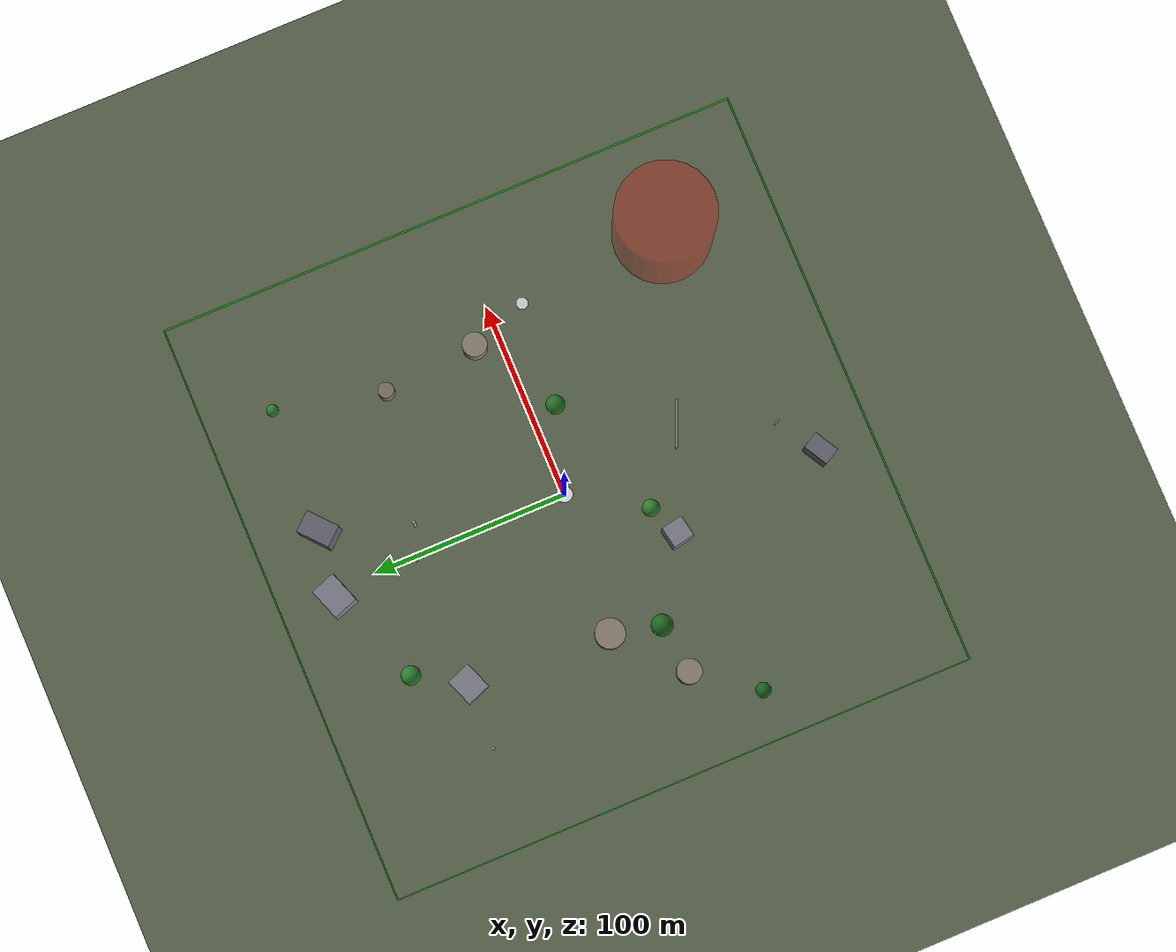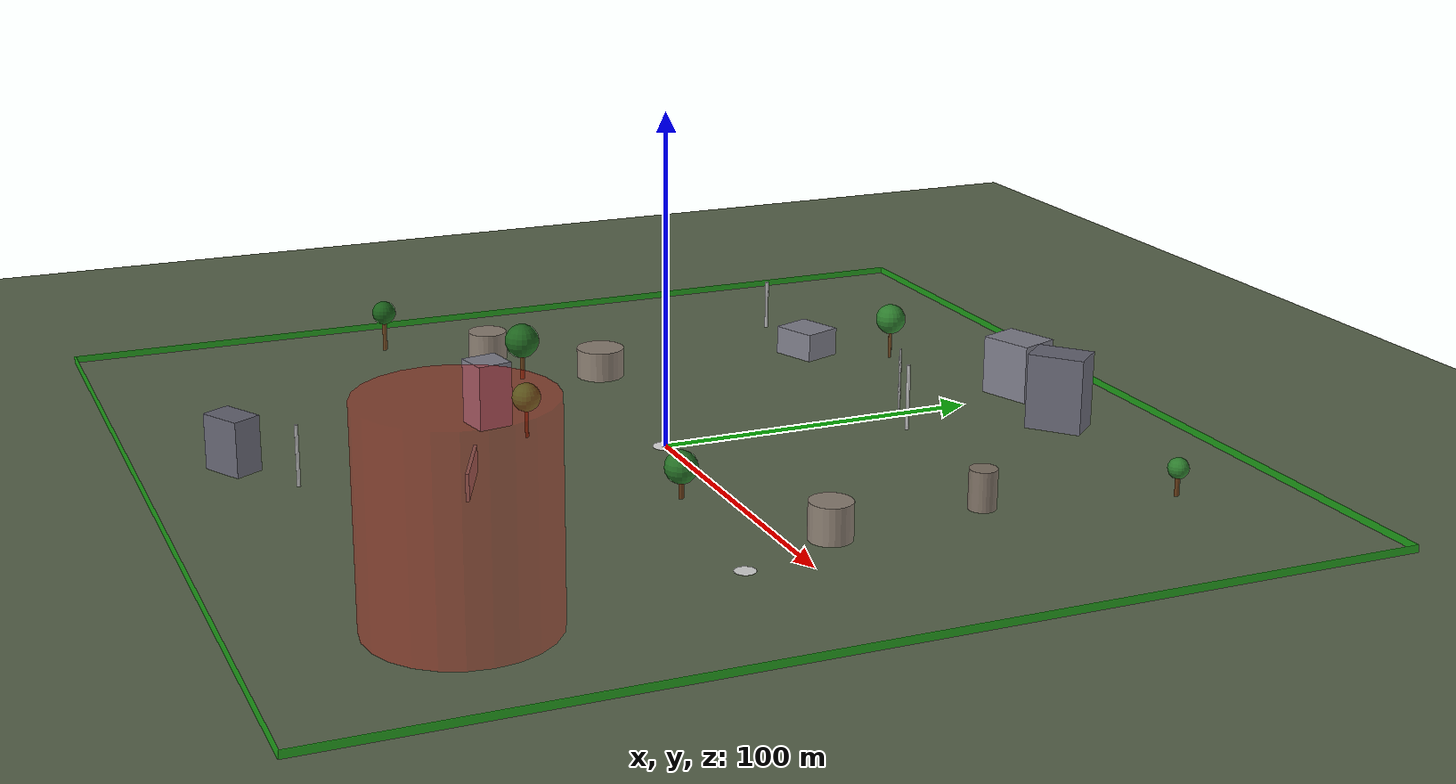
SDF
<?xml version="1.0" ?>
<sdf version="1.9">
  <!--
  Generated World: training_variant_005
  Seed: 47
  Difficulty: medium
  Obstacles: 20
  NFZs: 1
  Generated: 2025-12-27T10:39:35.546961
  Generator: Flyby F-11 World Generator v1.0.0
-->
  <world name="training_variant_005">
    <physics name="training_physics" type="ode">
      <max_step_size>0.001</max_step_size>
      <real_time_factor>1.0</real_time_factor>
      <real_time_update_rate>1000</real_time_update_rate>
      <ode>
        <solver>
          <type>quick</type>
          <iters>50</iters>
          <sor>1.3</sor>
        </solver>
        <constraints>
          <cfm>0.0</cfm>
          <erp>0.2</erp>
        </constraints>
      </ode>
    </physics>
    <plugin filename="gz-sim-physics-system" name="gz::sim::systems::Physics"/>
    <plugin filename="gz-sim-sensors-system" name="gz::sim::systems::Sensors">
      <render_engine>ogre2</render_engine>
    </plugin>
    <plugin filename="gz-sim-scene-broadcaster-system" name="gz::sim::systems::SceneBroadcaster"/>
    <plugin filename="gz-sim-user-commands-system" name="gz::sim::systems::UserCommands"/>
    <plugin filename="gz-sim-imu-system" name="gz::sim::systems::Imu"/>
    <plugin filename="gz-sim-air-pressure-system" name="gz::sim::systems::AirPressure"/>
    <plugin filename="gz-sim-magnetometer-system" name="gz::sim::systems::Magnetometer"/>
    <plugin filename="gz-sim-navsat-system" name="gz::sim::systems::NavSat"/>
    <plugin filename="gz-sim-contact-system" name="gz::sim::systems::Contact"/>
    <plugin filename="gz-sim-wind-effects-system" name="gz::sim::systems::WindEffects">
      <force_approximation_scaling_factor>1.0</force_approximation_scaling_factor>
    </plugin>
    <atmosphere type="adiabatic">
      <temperature>288.15</temperature>
      <pressure>101325</pressure>
      <mass_density>1.225</mass_density>
    </atmosphere>
    <wind>
      <linear_velocity>3.9388912079715634 -1.2501025225546427 0</linear_velocity>
    </wind>
    <spherical_coordinates>
      <surface_model>EARTH_WGS84</surface_model>
      <world_frame_orientation>ENU</world_frame_orientation>
      <latitude_deg>33.3853</latitude_deg>
      <longitude_deg>-117.5653</longitude_deg>
      <elevation>100</elevation>
      <heading_deg>0</heading_deg>
    </spherical_coordinates>
    <scene>
      <ambient>0.5 0.5 0.52 1</ambient>
      <background>0.6 0.6 0.65 1</background>
      <shadows>true</shadows>
      <grid>false</grid>
    </scene>
    <light type="directional" name="sun">
      <cast_shadows>true</cast_shadows>
      <pose>0 0 100 0 0 0</pose>
      <diffuse>0.5 0.5 0.55 1</diffuse>
      <specular>0.05 0.05 0.05 1</specular>
      <attenuation>
        <range>1000</range>
        <constant>0.9</constant>
        <linear>0.01</linear>
        <quadratic>0.001</quadratic>
      </attenuation>
      <direction>-0.3 0.0 -0.95</direction>
    </light>
    <model name="ground_plane">
      <static>true</static>
      <link name="link">
        <collision name="collision">
          <geometry>
            <plane>
              <normal>0 0 1</normal>
              <size>500 500</size>
            </plane>
          </geometry>
          <surface>
            <friction>
              <ode>
                <mu>100</mu>
                <mu2>50</mu2>
              </ode>
            </friction>
          </surface>
        </collision>
        <visual name="visual">
          <geometry>
            <plane>
              <normal>0 0 1</normal>
              <size>500 500</size>
            </plane>
          </geometry>
          <material>
            <ambient>0.35 0.4 0.3 1</ambient>
            <diffuse>0.35 0.4 0.3 1</diffuse>
          </material>
        </visual>
      </link>
    </model>
    <model name="geofence_north">
      <static>true</static>
      <pose>0 150.0 1 0 0 0</pose>
      <link name="link">
        <visual name="visual">
          <geometry>
            <box>
              <size>300.0 0.5 2</size>
            </box>
          </geometry>
          <material>
            <ambient>0 0.8 0 0.6</ambient>
            <diffuse>0 0.8 0 0.6</diffuse>
            <emissive>0 0.2 0 1</emissive>
          </material>
        </visual>
      </link>
    </model>
    <model name="geofence_south">
      <static>true</static>
      <pose>0 -150.0 1 0 0 0</pose>
      <link name="link">
        <visual name="visual">
          <geometry>
            <box>
              <size>300.0 0.5 2</size>
            </box>
          </geometry>
          <material>
            <ambient>0 0.8 0 0.6</ambient>
            <diffuse>0 0.8 0 0.6</diffuse>
            <emissive>0 0.2 0 1</emissive>
          </material>
        </visual>
      </link>
    </model>
    <model name="geofence_east">
      <static>true</static>
      <pose>150.0 0 1 0 0 0</pose>
      <link name="link">
        <visual name="visual">
          <geometry>
            <box>
              <size>0.5 300.0 2</size>
            </box>
          </geometry>
          <material>
            <ambient>0 0.8 0 0.6</ambient>
            <diffuse>0 0.8 0 0.6</diffuse>
            <emissive>0 0.2 0 1</emissive>
          </material>
        </visual>
      </link>
    </model>
    <model name="geofence_west">
      <static>true</static>
      <pose>-150.0 0 1 0 0 0</pose>
      <link name="link">
        <visual name="visual">
          <geometry>
            <box>
              <size>0.5 300.0 2</size>
            </box>
          </geometry>
          <material>
            <ambient>0 0.8 0 0.6</ambient>
            <diffuse>0 0.8 0 0.6</diffuse>
            <emissive>0 0.2 0 1</emissive>
          </material>
        </visual>
      </link>
    </model>
    <model name="nfz_0_volume">
      <static>true</static>
      <pose>100.32892064858498 -94.04209876550766 29.095461271017246 0 0 0</pose>
      <link name="link">
        <visual name="visual">
          <geometry>
            <cylinder>
              <radius>25.064046247989324</radius>
              <length>58.19092254203449</length>
            </cylinder>
          </geometry>
          <material>
            <ambient>1 0 0 0.30000000000000004</ambient>
            <diffuse>1 0 0 0.30000000000000004</diffuse>
          </material>
        </visual>
      </link>
    </model>
    <model name="obstacle_building_0">
      <static>true</static>
      <pose>-28.677314831344063 -122.37351143262165 8.355777101857477 0 0 0.5172842868538933</pose>
      <link name="link">
        <visual name="visual">
          <geometry>
            <box>
              <size>13.44405036307489 9.09122766790428 16.711554203714954</size>
            </box>
          </geometry>
          <material>
            <ambient>0.4 0.4 0.45 1.0</ambient>
            <diffuse>0.4 0.4 0.45 1.0</diffuse>
          </material>
        </visual>
        <collision name="collision">
          <geometry>
            <box>
              <size>13.44405036307489 9.09122766790428 16.711554203714954</size>
            </box>
          </geometry>
        </collision>
      </link>
    </model>
    <model name="obstacle_tank_1">
      <static>true</static>
      <pose>79.48908519899717 60.888133215556735 5.827948293810481 0 0 0.0</pose>
      <link name="link">
        <visual name="visual">
          <geometry>
            <cylinder>
              <radius>4.002506025546987</radius>
              <length>11.655896587620962</length>
            </cylinder>
          </geometry>
          <material>
            <ambient>0.5 0.45 0.4 1.0</ambient>
            <diffuse>0.5 0.45 0.4 1.0</diffuse>
          </material>
        </visual>
        <collision name="collision">
          <geometry>
            <cylinder>
              <radius>4.002506025546987</radius>
              <length>11.655896587620962</length>
            </cylinder>
          </geometry>
        </collision>
      </link>
    </model>
    <model name="obstacle_tank_2">
      <static>true</static>
      <pose>-71.48629177206274 6.1620242933300915 4.7027046254508065 0 0 0.0</pose>
      <link name="link">
        <visual name="visual">
          <geometry>
            <cylinder>
              <radius>7.594953427182958</radius>
              <length>9.405409250901613</length>
            </cylinder>
          </geometry>
          <material>
            <ambient>0.55 0.5 0.45 1.0</ambient>
            <diffuse>0.55 0.5 0.45 1.0</diffuse>
          </material>
        </visual>
        <collision name="collision">
          <geometry>
            <cylinder>
              <radius>7.594953427182958</radius>
              <length>9.405409250901613</length>
            </cylinder>
          </geometry>
        </collision>
      </link>
    </model>
    <model name="obstacle_building_3">
      <static>true</static>
      <pose>-39.41414814989017 -42.51752864720842 10.092223840539242 0 0 0.18741107503801643</pose>
      <link name="link">
        <visual name="visual">
          <geometry>
            <box>
              <size>10.904585871094236 11.048510695751794 20.184447681078485</size>
            </box>
          </geometry>
          <material>
            <ambient>0.5 0.5 0.55 1.0</ambient>
            <diffuse>0.5 0.5 0.55 1.0</diffuse>
          </material>
        </visual>
        <collision name="collision">
          <geometry>
            <box>
              <size>10.904585871094236 11.048510695751794 20.184447681078485</size>
            </box>
          </geometry>
        </collision>
      </link>
    </model>
    <model name="obstacle_wall_4">
      <static>true</static>
      <pose>10.28392038874918 -63.342504014275946 4.001784192724832 0 0 2.7392964754079556</pose>
      <link name="link">
        <visual name="visual">
          <geometry>
            <box>
              <size>23.72430763418231 1.035278924744573 8.003568385449665</size>
            </box>
          </geometry>
          <material>
            <ambient>0.48 0.48 0.44 1.0</ambient>
            <diffuse>0.48 0.48 0.44 1.0</diffuse>
          </material>
        </visual>
        <collision name="collision">
          <geometry>
            <box>
              <size>23.72430763418231 1.035278924744573 8.003568385449665</size>
            </box>
          </geometry>
        </collision>
      </link>
    </model>
    <model name="obstacle_pole_5">
      <static>true</static>
      <pose>-8.052465922775554 -108.36427126537181 9.174294666147006 0 0 0.0</pose>
      <link name="link">
        <visual name="visual">
          <geometry>
            <cylinder>
              <radius>0.5097624820000505</radius>
              <length>18.34858933229401</length>
            </cylinder>
          </geometry>
          <material>
            <ambient>0.7 0.7 0.7 1.0</ambient>
            <diffuse>0.7 0.7 0.7 1.0</diffuse>
          </material>
        </visual>
        <collision name="collision">
          <geometry>
            <cylinder>
              <radius>0.5097624820000505</radius>
              <length>18.34858933229401</length>
            </cylinder>
          </geometry>
        </collision>
      </link>
    </model>
    <model name="obstacle_tree_6">
      <static>true</static>
      <pose>-125.21986435171746 -51.13276719807203 0 0 0 0.0</pose>
      <link name="link">
        <visual name="trunk">
          <pose>0 0 5.318807754143222 0 0 0</pose>
          <geometry>
            <cylinder>
              <radius>0.7024563816316823</radius>
              <length>10.637615508286444</length>
            </cylinder>
          </geometry>
          <material>
            <ambient>0.42 0.27 0.12 1.0</ambient>
            <diffuse>0.42 0.27 0.12 1.0</diffuse>
          </material>
        </visual>
        <visual name="canopy">
          <pose>0 0 12.95298847736598 0 0 0</pose>
          <geometry>
            <sphere>
              <radius>3.8589549484658923</radius>
            </sphere>
          </geometry>
          <material>
            <ambient>0.1 0.38 0.1 1.0</ambient>
            <diffuse>0.1 0.38 0.1 1.0</diffuse>
          </material>
        </visual>
        <collision name="collision">
          <pose>0 0 9.177762702609115 0 0 0</pose>
          <geometry>
            <cylinder>
              <radius>3.8589549484658923</radius>
              <length>18.35552540521823</length>
            </cylinder>
          </geometry>
        </collision>
      </link>
    </model>
    <model name="obstacle_building_7">
      <static>true</static>
      <pose>-3.8435845888359523 121.70614665746152 9.153931159291067 0 0 0.34862753357358717</pose>
      <link name="link">
        <visual name="visual">
          <geometry>
            <box>
              <size>16.76253263825766 13.196531757626184 18.307862318582135</size>
            </box>
          </geometry>
          <material>
            <ambient>0.5 0.5 0.55 1.0</ambient>
            <diffuse>0.5 0.5 0.55 1.0</diffuse>
          </material>
        </visual>
        <collision name="collision">
          <geometry>
            <box>
              <size>16.76253263825766 13.196531757626184 18.307862318582135</size>
            </box>
          </geometry>
        </collision>
      </link>
    </model>
    <model name="obstacle_tank_8">
      <static>true</static>
      <pose>83.67434287197096 12.542079202730832 5.412996361288505 0 0 0.0</pose>
      <link name="link">
        <visual name="visual">
          <geometry>
            <cylinder>
              <radius>6.187970507954266</radius>
              <length>10.82599272257701</length>
            </cylinder>
          </geometry>
          <material>
            <ambient>0.55 0.5 0.45 1.0</ambient>
            <diffuse>0.55 0.5 0.45 1.0</diffuse>
          </material>
        </visual>
        <collision name="collision">
          <geometry>
            <cylinder>
              <radius>6.187970507954266</radius>
              <length>10.82599272257701</length>
            </cylinder>
          </geometry>
        </collision>
      </link>
    </model>
    <model name="obstacle_building_9">
      <static>true</static>
      <pose>28.55887430014303 116.61640179092689 11.643143612716198 0 0 0.7181854262839178</pose>
      <link name="link">
        <visual name="visual">
          <geometry>
            <box>
              <size>17.110143664465692 11.470114852377183 23.286287225432396</size>
            </box>
          </geometry>
          <material>
            <ambient>0.4 0.4 0.45 1.0</ambient>
            <diffuse>0.4 0.4 0.45 1.0</diffuse>
          </material>
        </visual>
        <collision name="collision">
          <geometry>
            <box>
              <size>17.110143664465692 11.470114852377183 23.286287225432396</size>
            </box>
          </geometry>
        </collision>
      </link>
    </model>
    <model name="obstacle_tree_10">
      <static>true</static>
      <pose>-77.64947626901646 -18.39108995635118 0 0 0 0.0</pose>
      <link name="link">
        <visual name="trunk">
          <pose>0 0 4.730762405164977 0 0 0</pose>
          <geometry>
            <cylinder>
              <radius>0.7855313002653266</radius>
              <length>9.461524810329953</length>
            </cylinder>
          </geometry>
          <material>
            <ambient>0.4 0.25 0.1 1.0</ambient>
            <diffuse>0.4 0.25 0.1 1.0</diffuse>
          </material>
        </visual>
        <visual name="canopy">
          <pose>0 0 12.754677779213617 0 0 0</pose>
          <geometry>
            <sphere>
              <radius>5.488588281472774</radius>
            </sphere>
          </geometry>
          <material>
            <ambient>0.12 0.4 0.12 1.0</ambient>
            <diffuse>0.12 0.4 0.12 1.0</diffuse>
          </material>
        </visual>
        <collision name="collision">
          <pose>0 0 10.21935068663775 0 0 0</pose>
          <geometry>
            <cylinder>
              <radius>5.488588281472774</radius>
              <length>20.4387013732755</length>
            </cylinder>
          </geometry>
        </collision>
      </link>
    </model>
    <model name="obstacle_pole_11">
      <static>true</static>
      <pose>-100.89768115581091 79.17173534487097 8.139381412357752 0 0 0.0</pose>
      <link name="link">
        <visual name="visual">
          <geometry>
            <cylinder>
              <radius>0.5762894538015346</radius>
              <length>16.278762824715503</length>
            </cylinder>
          </geometry>
          <material>
            <ambient>0.7 0.7 0.7 1.0</ambient>
            <diffuse>0.7 0.7 0.7 1.0</diffuse>
          </material>
        </visual>
        <collision name="collision">
          <geometry>
            <cylinder>
              <radius>0.5762894538015346</radius>
              <length>16.278762824715503</length>
            </cylinder>
          </geometry>
        </collision>
      </link>
    </model>
    <model name="obstacle_tree_12">
      <static>true</static>
      <pose>-23.315932397935427 -35.47763247614017 0 0 0 0.0</pose>
      <link name="link">
        <visual name="trunk">
          <pose>0 0 4.95787610387152 0 0 0</pose>
          <geometry>
            <cylinder>
              <radius>0.5324255450074341</radius>
              <length>9.91575220774304</length>
            </cylinder>
          </geometry>
          <material>
            <ambient>0.38 0.22 0.08 1.0</ambient>
            <diffuse>0.38 0.22 0.08 1.0</diffuse>
          </material>
        </visual>
        <visual name="canopy">
          <pose>0 0 12.514809403829785 0 0 0</pose>
          <geometry>
            <sphere>
              <radius>4.331761993477908</radius>
            </sphere>
          </geometry>
          <material>
            <ambient>0.18 0.5 0.18 1.0</ambient>
            <diffuse>0.18 0.5 0.18 1.0</diffuse>
          </material>
        </visual>
        <collision name="collision">
          <pose>0 0 9.289638097349428 0 0 0</pose>
          <geometry>
            <cylinder>
              <radius>4.331761993477908</radius>
              <length>18.579276194698856</length>
            </cylinder>
          </geometry>
        </collision>
      </link>
    </model>
    <model name="obstacle_pole_13">
      <static>true</static>
      <pose>-2.5119076544501695 78.86218210054349 10.058290244473955 0 0 0.0</pose>
      <link name="link">
        <visual name="visual">
          <geometry>
            <cylinder>
              <radius>0.3543537670503822</radius>
              <length>20.11658048894791</length>
            </cylinder>
          </geometry>
          <material>
            <ambient>0.7 0.7 0.7 1.0</ambient>
            <diffuse>0.7 0.7 0.7 1.0</diffuse>
          </material>
        </visual>
        <collision name="collision">
          <geometry>
            <cylinder>
              <radius>0.3543537670503822</radius>
              <length>20.11658048894791</length>
            </cylinder>
          </geometry>
        </collision>
      </link>
    </model>
    <model name="obstacle_tree_14">
      <static>true</static>
      <pose>91.98166063829834 115.5635293517301 0 0 0 0.0</pose>
      <link name="link">
        <visual name="trunk">
          <pose>0 0 3.221536230484894 0 0 0</pose>
          <geometry>
            <cylinder>
              <radius>0.669081663118311</radius>
              <length>6.443072460969788</length>
            </cylinder>
          </geometry>
          <material>
            <ambient>0.38 0.22 0.08 1.0</ambient>
            <diffuse>0.38 0.22 0.08 1.0</diffuse>
          </material>
        </visual>
        <visual name="canopy">
          <pose>0 0 8.26104968117026 0 0 0</pose>
          <geometry>
            <sphere>
              <radius>3.0299620336674535</radius>
            </sphere>
          </geometry>
          <material>
            <ambient>0.18 0.5 0.18 1.0</ambient>
            <diffuse>0.18 0.5 0.18 1.0</diffuse>
          </material>
        </visual>
        <collision name="collision">
          <pose>0 0 6.251498264152348 0 0 0</pose>
          <geometry>
            <cylinder>
              <radius>3.0299620336674535</radius>
              <length>12.502996528304696</length>
            </cylinder>
          </geometry>
        </collision>
      </link>
    </model>
    <model name="obstacle_tree_15">
      <static>true</static>
      <pose>-53.31616981634066 102.49894297274545 0 0 0 0.0</pose>
      <link name="link">
        <visual name="trunk">
          <pose>0 0 5.136728861806581 0 0 0</pose>
          <geometry>
            <cylinder>
              <radius>0.5140057195966097</radius>
              <length>10.273457723613163</length>
            </cylinder>
          </geometry>
          <material>
            <ambient>0.42 0.27 0.12 1.0</ambient>
            <diffuse>0.42 0.27 0.12 1.0</diffuse>
          </material>
        </visual>
        <visual name="canopy">
          <pose>0 0 13.19314461938674 0 0 0</pose>
          <geometry>
            <sphere>
              <radius>4.866144826289295</radius>
            </sphere>
          </geometry>
          <material>
            <ambient>0.18 0.5 0.18 1.0</ambient>
            <diffuse>0.18 0.5 0.18 1.0</diffuse>
          </material>
        </visual>
        <collision name="collision">
          <pose>0 0 10.002873688095876 0 0 0</pose>
          <geometry>
            <cylinder>
              <radius>4.866144826289295</radius>
              <length>20.005747376191753</length>
            </cylinder>
          </geometry>
        </collision>
      </link>
    </model>
    <model name="obstacle_pole_16">
      <static>true</static>
      <pose>13.866287117142434 72.88252200109895 10.174436612099587 0 0 0.0</pose>
      <link name="link">
        <visual name="visual">
          <geometry>
            <cylinder>
              <radius>0.56894431725297</radius>
              <length>20.348873224199174</length>
            </cylinder>
          </geometry>
          <material>
            <ambient>0.75 0.75 0.75 1.0</ambient>
            <diffuse>0.75 0.75 0.75 1.0</diffuse>
          </material>
        </visual>
        <collision name="collision">
          <geometry>
            <cylinder>
              <radius>0.56894431725297</radius>
              <length>20.348873224199174</length>
            </cylinder>
          </geometry>
        </collision>
      </link>
    </model>
    <model name="obstacle_tank_17">
      <static>true</static>
      <pose>-103.0700741049883 -22.02425737849964 4.688877235902562 0 0 0.0</pose>
      <link name="link">
        <visual name="visual">
          <geometry>
            <cylinder>
              <radius>6.283338817378972</radius>
              <length>9.377754471805124</length>
            </cylinder>
          </geometry>
          <material>
            <ambient>0.55 0.5 0.45 1.0</ambient>
            <diffuse>0.55 0.5 0.45 1.0</diffuse>
          </material>
        </visual>
        <collision name="collision">
          <geometry>
            <cylinder>
              <radius>6.283338817378972</radius>
              <length>9.377754471805124</length>
            </cylinder>
          </geometry>
        </collision>
      </link>
    </model>
    <model name="obstacle_tree_18">
      <static>true</static>
      <pose>41.360548582053354 -12.50221319499785 0 0 0 0.0</pose>
      <link name="link">
        <visual name="trunk">
          <pose>0 0 3.1906088360584706 0 0 0</pose>
          <geometry>
            <cylinder>
              <radius>0.727917475601856</radius>
              <length>6.381217672116941</length>
            </cylinder>
          </geometry>
          <material>
            <ambient>0.38 0.22 0.08 1.0</ambient>
            <diffuse>0.38 0.22 0.08 1.0</diffuse>
          </material>
        </visual>
        <visual name="canopy">
          <pose>0 0 9.257007037672091 0 0 0</pose>
          <geometry>
            <sphere>
              <radius>4.792982275925251</radius>
            </sphere>
          </geometry>
          <material>
            <ambient>0.15 0.45 0.15 1.0</ambient>
            <diffuse>0.15 0.45 0.15 1.0</diffuse>
          </material>
        </visual>
        <collision name="collision">
          <pose>0 0 7.9835911119837215 0 0 0</pose>
          <geometry>
            <cylinder>
              <radius>4.792982275925251</radius>
              <length>15.967182223967443</length>
            </cylinder>
          </geometry>
        </collision>
      </link>
    </model>
    <model name="obstacle_building_19">
      <static>true</static>
      <pose>-67.60262811380449 78.57561961936608 4.562627815781063 0 0 0.3632946273945259</pose>
      <link name="link">
        <visual name="visual">
          <geometry>
            <box>
              <size>14.767157780122021 12.87072837126901 9.125255631562126</size>
            </box>
          </geometry>
          <material>
            <ambient>0.5 0.5 0.55 1.0</ambient>
            <diffuse>0.5 0.5 0.55 1.0</diffuse>
          </material>
        </visual>
        <collision name="collision">
          <geometry>
            <box>
              <size>14.767157780122021 12.87072837126901 9.125255631562126</size>
            </box>
          </geometry>
        </collision>
      </link>
    </model>
    <model name="lz_primary">
      <static>true</static>
      <pose>0 0 0.02 0 0 0</pose>
      <link name="link">
        <visual name="pad">
          <geometry>
            <cylinder>
              <radius>4.0</radius>
              <length>0.04</length>
            </cylinder>
          </geometry>
          <material>
            <ambient>0.9 0.9 0.9 1</ambient>
            <diffuse>0.9 0.9 0.9 1</diffuse>
          </material>
        </visual>
        <visual name="H_v">
          <pose>0 0 0.02 0 0 0</pose>
          <geometry>
            <box>
              <size>0.6 2.5 0.01</size>
            </box>
          </geometry>
          <material>
            <ambient>0 0 0.8 1</ambient>
            <diffuse>0 0 0.8 1</diffuse>
          </material>
        </visual>
        <visual name="H_h">
          <pose>0 0 0.02 0 0 0</pose>
          <geometry>
            <box>
              <size>2.5 0.6 0.01</size>
            </box>
          </geometry>
          <material>
            <ambient>0 0 0.8 1</ambient>
            <diffuse>0 0 0.8 1</diffuse>
          </material>
        </visual>
      </link>
    </model>
    <model name="lz_secondary">
      <static>true</static>
      <pose>94.97247844709614 -17.219434347562583 0.02 0 0 0</pose>
      <link name="link">
        <visual name="pad">
          <geometry>
            <cylinder>
              <radius>3.0</radius>
              <length>0.04</length>
            </cylinder>
          </geometry>
          <material>
            <ambient>0.85 0.85 0.85 1</ambient>
            <diffuse>0.85 0.85 0.85 1</diffuse>
          </material>
        </visual>
      </link>
    </model>
    <include>
      <uri>model://iris_with_ardupilot</uri>
      <name>iris</name>
      <pose>0 0 0.5 0 0 0</pose>
    </include>
  </world>
</sdf>

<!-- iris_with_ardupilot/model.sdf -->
<sdf version="1.9">
  <model name="iris_with_ardupilot">
    <pose>0 0 0.2 0 0 0</pose>

    <link name="base_link">
      <inertial>
        <mass>1.5</mass>
        <inertia>
          <ixx>0.029125</ixx>
          <ixy>0</ixy>
          <ixz>0</ixz>
          <iyy>0.029125</iyy>
          <iyz>0</iyz>
          <izz>0.055225</izz>
        </inertia>
      </inertial>

      <visual name="body_visual">
        <geometry>
          <box>
            <size>0.47 0.47 0.11</size>
          </box>
        </geometry>
        <material>
          <ambient>0.2 0.2 0.2 1</ambient>
          <diffuse>0.2 0.2 0.2 1</diffuse>
        </material>
      </visual>

      <!-- Center marker for orientation (green = forward) -->
      <visual name="center_marker">
        <pose>0.15 0 0 0 0 0</pose>
        <geometry>
          <sphere>
            <radius>0.05</radius>
          </sphere>
        </geometry>
        <material>
          <ambient>0 1 0 1</ambient>
          <diffuse>0 1 0 1</diffuse>
        </material>
      </visual>

      <collision name="collision">
        <geometry>
          <box>
            <size>0.47 0.47 0.11</size>
          </box>
        </geometry>
      </collision>

      <!-- GPS/NavSat Sensor                -->
      <!-- Consumer-grade GPS accuracy      -->
      <sensor name="navsat_sensor" type="navsat">
        <always_on>1</always_on>
        <update_rate>10</update_rate>
        <topic>gps</topic>
        <navsat>
          <position_sensing>
            <horizontal>
              <noise type="gaussian">
                <mean>0.0</mean>
                <stddev>0.5</stddev>
              </noise>
            </horizontal>
            <vertical>
              <noise type="gaussian">
                <mean>0.0</mean>
                <stddev>1.0</stddev>
              </noise>
            </vertical>
          </position_sensing>
          <velocity_sensing>
            <horizontal>
              <noise type="gaussian">
                <mean>0.0</mean>
                <stddev>0.05</stddev>
              </noise>
            </horizontal>
            <vertical>
              <noise type="gaussian">
                <mean>0.0</mean>
                <stddev>0.1</stddev>
              </noise>
            </vertical>
          </velocity_sensing>
        </navsat>
      </sensor>

      <!-- Magnetometer Sensor              -->
      <!-- Earth magnetic field sensing     -->
      <!-- Declination: ~11.5 deg E (San Diego) -->
      <sensor name="magnetometer_sensor" type="magnetometer">
        <always_on>1</always_on>
        <update_rate>50</update_rate>
        <topic>magnetometer</topic>
        <magnetometer>
          <x>
            <noise type="gaussian">
              <mean>0</mean>
              <stddev>0.001</stddev>
              <bias_mean>0.00001</bias_mean>
              <bias_stddev>0.000002</bias_stddev>
            </noise>
          </x>
          <y>
            <noise type="gaussian">
              <mean>0</mean>
              <stddev>0.001</stddev>
              <bias_mean>0.00001</bias_mean>
              <bias_stddev>0.000002</bias_stddev>
            </noise>
          </y>
          <z>
            <noise type="gaussian">
              <mean>0</mean>
              <stddev>0.001</stddev>
              <bias_mean>0.00001</bias_mean>
              <bias_stddev>0.000002</bias_stddev>
            </noise>
          </z>
        </magnetometer>
      </sensor>

      <!-- Barometer Sensor                 -->
      <!-- Atmospheric pressure sensing     -->
      <!-- ~8.3 Pa per meter at sea level   -->
      <sensor name="air_pressure_sensor" type="air_pressure">
        <always_on>1</always_on>
        <update_rate>20</update_rate>
        <topic>air_pressure</topic>
        <air_pressure>
          <reference_altitude>0</reference_altitude>
          <pressure>
            <noise type="gaussian">
              <mean>0</mean>
              <stddev>10</stddev>
            </noise>
          </pressure>
        </air_pressure>
      </sensor>

    </link>

    <!-- Rotor 0 (Front Right, CW)        -->
    <link name="rotor_0">
      <pose>0.13 -0.22 0.023 0 0 0</pose>
      <inertial>
        <mass>0.005</mass>
        <inertia>
          <ixx>9.75e-07</ixx>
          <ixy>0</ixy>
          <ixz>0</ixz>
          <iyy>0.000166704</iyy>
          <iyz>0</iyz>
          <izz>0.000167604</izz>
        </inertia>
      </inertial>
      <visual name="visual">
        <geometry>
          <cylinder>
            <radius>0.128</radius>
            <length>0.005</length>
          </cylinder>
        </geometry>
        <material>
          <ambient>1 0 0 1</ambient>
          <diffuse>1 0 0 1</diffuse>
        </material>
      </visual>
    </link>

    <!-- Rotor 1 (Back Left, CW)          -->
    <link name="rotor_1">
      <pose>-0.13 0.2 0.023 0 0 0</pose>
      <inertial>
        <mass>0.005</mass>
        <inertia>
          <ixx>9.75e-07</ixx>
          <ixy>0</ixy>
          <ixz>0</ixz>
          <iyy>0.000166704</iyy>
          <iyz>0</iyz>
          <izz>0.000167604</izz>
        </inertia>
      </inertial>
      <visual name="visual">
        <geometry>
          <cylinder>
            <radius>0.128</radius>
            <length>0.005</length>
          </cylinder>
        </geometry>
        <material>
          <ambient>1 0 0 1</ambient>
          <diffuse>1 0 0 1</diffuse>
        </material>
      </visual>
    </link>

    <!-- Rotor 2 (Front Left, CCW)        -->
    <link name="rotor_2">
      <pose>0.13 0.22 0.023 0 0 0</pose>
      <inertial>
        <mass>0.005</mass>
        <inertia>
          <ixx>9.75e-07</ixx>
          <ixy>0</ixy>
          <ixz>0</ixz>
          <iyy>0.000166704</iyy>
          <iyz>0</iyz>
          <izz>0.000167604</izz>
        </inertia>
      </inertial>
      <visual name="visual">
        <geometry>
          <cylinder>
            <radius>0.128</radius>
            <length>0.005</length>
          </cylinder>
        </geometry>
        <material>
          <ambient>0 0 1 1</ambient>
          <diffuse>0 0 1 1</diffuse>
        </material>
      </visual>
    </link>

    <!-- Rotor 3 (Back Right, CCW)        -->
    <link name="rotor_3">
      <pose>-0.13 -0.2 0.023 0 0 0</pose>
      <inertial>
        <mass>0.005</mass>
        <inertia>
          <ixx>9.75e-07</ixx>
          <ixy>0</ixy>
          <ixz>0</ixz>
          <iyy>0.000166704</iyy>
          <iyz>0</iyz>
          <izz>0.000167604</izz>
        </inertia>
      </inertial>
      <visual name="visual">
        <geometry>
          <cylinder>
            <radius>0.128</radius>
            <length>0.005</length>
          </cylinder>
        </geometry>
        <material>
          <ambient>0 0 1 1</ambient>
          <diffuse>0 0 1 1</diffuse>
        </material>
      </visual>
    </link>

    <!-- Rotor joints -->
    <joint name="rotor_0_joint" type="revolute">
      <parent>base_link</parent>
      <child>rotor_0</child>
      <axis>
        <xyz>0 0 1</xyz>
        <limit>
          <lower>-1e16</lower>
          <upper>1e16</upper>
        </limit>
      </axis>
    </joint>

    <joint name="rotor_1_joint" type="revolute">
      <parent>base_link</parent>
      <child>rotor_1</child>
      <axis>
        <xyz>0 0 1</xyz>
        <limit>
          <lower>-1e16</lower>
          <upper>1e16</upper>
        </limit>
      </axis>
    </joint>

    <joint name="rotor_2_joint" type="revolute">
      <parent>base_link</parent>
      <child>rotor_2</child>
      <axis>
        <xyz>0 0 1</xyz>
        <limit>
          <lower>-1e16</lower>
          <upper>1e16</upper>
        </limit>
      </axis>
    </joint>

    <joint name="rotor_3_joint" type="revolute">
      <parent>base_link</parent>
      <child>rotor_3</child>
      <axis>
        <xyz>0 0 1</xyz>
        <limit>
          <lower>-1e16</lower>
          <upper>1e16</upper>
        </limit>
      </axis>
    </joint>

    <!-- IMU Sensor Link                  -->
    <!-- 250Hz MEMS IMU with noise        -->
    <link name="imu_link">
      <pose>0 0 0 0 0 0</pose>
      <inertial>
        <mass>0.001</mass>
        <inertia>
          <ixx>1e-05</ixx>
          <ixy>0</ixy>
          <ixz>0</ixz>
          <iyy>1e-05</iyy>
          <iyz>0</iyz>
          <izz>1e-05</izz>
        </inertia>
      </inertial>
      <sensor name="imu_sensor" type="imu">
        <always_on>1</always_on>
        <update_rate>250</update_rate>
        <topic>imu</topic>
        <imu>
          <angular_velocity>
            <x>
              <noise type="gaussian">
                <mean>0</mean>
                <stddev>0.009</stddev>
                <bias_mean>0.0001</bias_mean>
                <bias_stddev>0.00002</bias_stddev>
              </noise>
            </x>
            <y>
              <noise type="gaussian">
                <mean>0</mean>
                <stddev>0.009</stddev>
                <bias_mean>0.0001</bias_mean>
                <bias_stddev>0.00002</bias_stddev>
              </noise>
            </y>
            <z>
              <noise type="gaussian">
                <mean>0</mean>
                <stddev>0.009</stddev>
                <bias_mean>0.0001</bias_mean>
                <bias_stddev>0.00002</bias_stddev>
              </noise>
            </z>
          </angular_velocity>
          <linear_acceleration>
            <x>
              <noise type="gaussian">
                <mean>0</mean>
                <stddev>0.017</stddev>
                <bias_mean>0.001</bias_mean>
                <bias_stddev>0.0002</bias_stddev>
              </noise>
            </x>
            <y>
              <noise type="gaussian">
                <mean>0</mean>
                <stddev>0.017</stddev>
                <bias_mean>0.001</bias_mean>
                <bias_stddev>0.0002</bias_stddev>
              </noise>
            </y>
            <z>
              <noise type="gaussian">
                <mean>0</mean>
                <stddev>0.017</stddev>
                <bias_mean>0.001</bias_mean>
                <bias_stddev>0.0002</bias_stddev>
              </noise>
            </z>
          </linear_acceleration>
        </imu>
      </sensor>
    </link>

    <joint name="imu_joint" type="fixed">
      <parent>base_link</parent>
      <child>imu_link</child>
    </joint>

    <!-- Rangefinder Link                 -->
    <!-- Downward-facing lidar for AGL    -->
    <link name="rangefinder_link">
      <pose>0 0 -0.05 0 0 0</pose>
      <inertial>
        <mass>0.01</mass>
        <inertia>
          <ixx>1e-05</ixx>
          <ixy>0</ixy>
          <ixz>0</ixz>
          <iyy>1e-05</iyy>
          <iyz>0</iyz>
          <izz>1e-05</izz>
        </inertia>
      </inertial>
      <visual name="visual">
        <geometry>
          <cylinder>
            <radius>0.01</radius>
            <length>0.02</length>
          </cylinder>
        </geometry>
        <material>
          <ambient>0.5 0.5 0.5 1</ambient>
          <diffuse>0.5 0.5 0.5 1</diffuse>
        </material>
      </visual>
      <sensor name="rangefinder" type="gpu_lidar">
        <!-- Pointing straight down (pitch = -90 deg = -1.5708 rad) -->
        <pose>0 0 0 0 1.5708 0</pose>
        <always_on>1</always_on>
        <update_rate>20</update_rate>
        <topic>rangefinder</topic>
        <ray>
          <scan>
            <horizontal>
              <samples>1</samples>
              <resolution>1</resolution>
              <min_angle>0</min_angle>
              <max_angle>0</max_angle>
            </horizontal>
            <vertical>
              <samples>1</samples>
              <resolution>1</resolution>
              <min_angle>0</min_angle>
              <max_angle>0</max_angle>
            </vertical>
          </scan>
          <range>
            <min>0.1</min>
            <max>40.0</max>
            <resolution>0.01</resolution>
          </range>
          <noise>
            <type>gaussian</type>
            <mean>0</mean>
            <stddev>0.02</stddev>
          </noise>
        </ray>
        <visualize>false</visualize>
      </sensor>
    </link>

    <joint name="rangefinder_joint" type="fixed">
      <parent>base_link</parent>
      <child>rangefinder_link</child>
    </joint>

    <!-- ArduPilot Plugin                 -->
    <plugin filename="ArduPilotPlugin" name="ArduPilotPlugin">
      <!-- Network Configuration -->
      <fdm_addr>127.0.0.1</fdm_addr>
      <fdm_port_in>9002</fdm_port_in>
      <fdm_port_out>9003</fdm_port_out>
      <connectionTimeoutMaxCount>5</connectionTimeoutMaxCount>

      <!-- Simulation Settings -->
      <lock_step>1</lock_step>
      <have_32_channels>0</have_32_channels>

      <!-- Coordinate Transforms -->
      <modelXYZToAirplaneXForwardZDown>0 0 0 3.141593 0 0</modelXYZToAirplaneXForwardZDown>
      <gazeboXYZToNED>0 0 0 3.141593 0 0</gazeboXYZToNED>

      <!-- Sensor Reference -->
      <imuName>imu_link::imu_sensor</imuName>

      <!-- Control Channel 0: Front Right (CW) -->
      <control channel="0">
        <jointName>rotor_0_joint</jointName>
        <useForce>1</useForce>
        <multiplier>838</multiplier>
        <offset>-0.5</offset>
        <servo_min>1000</servo_min>
        <servo_max>2000</servo_max>
        <type>VELOCITY</type>
        <p_gain>0.20</p_gain>
        <i_gain>0</i_gain>
        <d_gain>0</d_gain>
        <i_max>0</i_max>
        <i_min>0</i_min>
        <cmd_max>2.5</cmd_max>
        <cmd_min>-2.5</cmd_min>
      </control>

      <!-- Control Channel 1: Back Left (CW) -->
      <control channel="1">
        <jointName>rotor_1_joint</jointName>
        <useForce>1</useForce>
        <multiplier>838</multiplier>
        <offset>-0.5</offset>
        <servo_min>1000</servo_min>
        <servo_max>2000</servo_max>
        <type>VELOCITY</type>
        <p_gain>0.20</p_gain>
        <i_gain>0</i_gain>
        <d_gain>0</d_gain>
        <i_max>0</i_max>
        <i_min>0</i_min>
        <cmd_max>2.5</cmd_max>
        <cmd_min>-2.5</cmd_min>
      </control>

      <!-- Control Channel 2: Front Left (CCW) -->
      <control channel="2">
        <jointName>rotor_2_joint</jointName>
        <useForce>1</useForce>
        <multiplier>838</multiplier>
        <offset>-0.5</offset>
        <servo_min>1000</servo_min>
        <servo_max>2000</servo_max>
        <type>VELOCITY</type>
        <p_gain>0.20</p_gain>
        <i_gain>0</i_gain>
        <d_gain>0</d_gain>
        <i_max>0</i_max>
        <i_min>0</i_min>
        <cmd_max>2.5</cmd_max>
        <cmd_min>-2.5</cmd_min>
      </control>

      <!-- Control Channel 3: Back Right (CCW) -->
      <control channel="3">
        <jointName>rotor_3_joint</jointName>
        <useForce>1</useForce>
        <multiplier>838</multiplier>
        <offset>-0.5</offset>
        <servo_min>1000</servo_min>
        <servo_max>2000</servo_max>
        <type>VELOCITY</type>
        <p_gain>0.20</p_gain>
        <i_gain>0</i_gain>
        <d_gain>0</d_gain>
        <i_max>0</i_max>
        <i_min>0</i_min>
        <cmd_max>2.5</cmd_max>
        <cmd_min>-2.5</cmd_min>
      </control>
    </plugin>

  </model>
</sdf>
